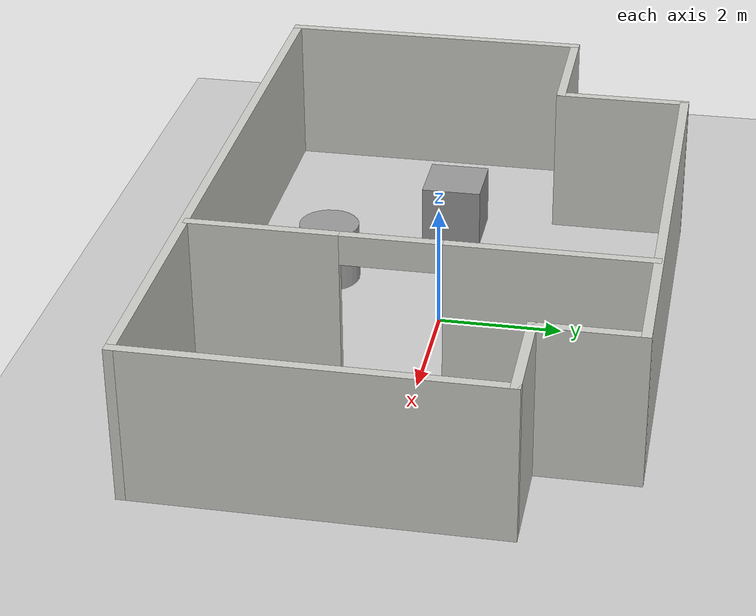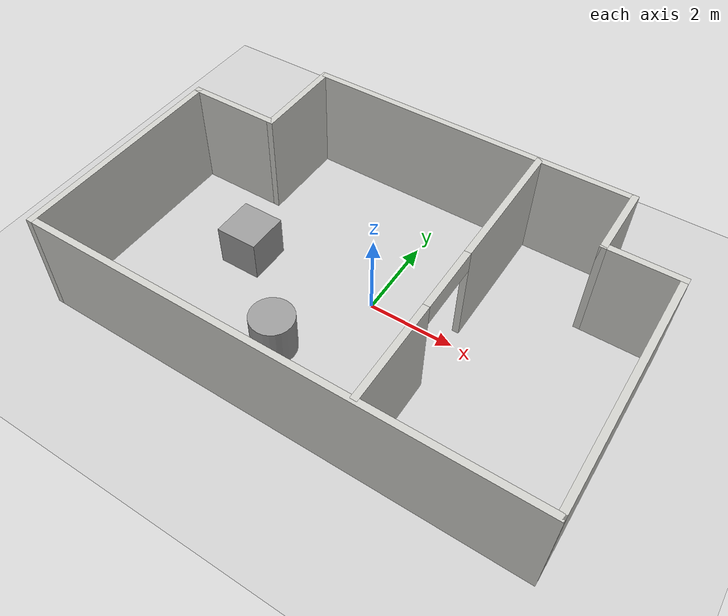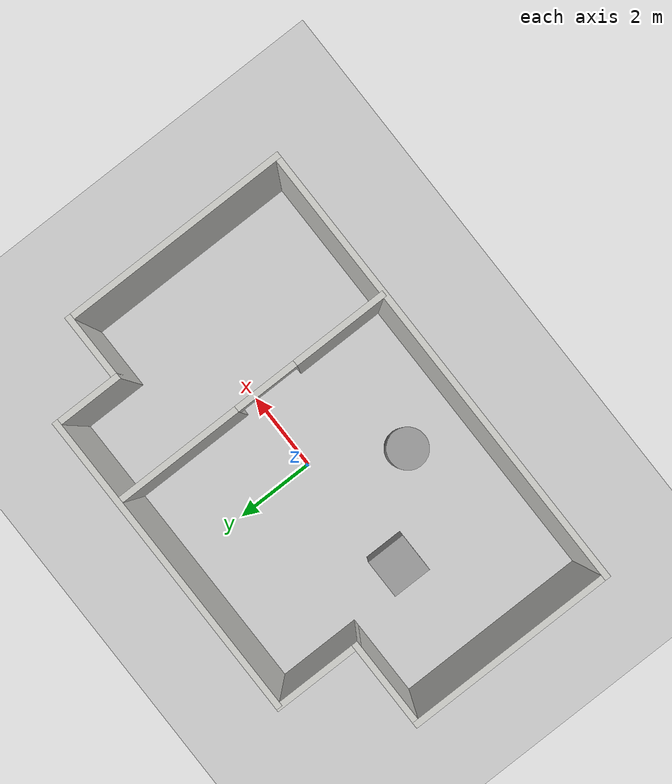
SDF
<sdf version="1.7">
 <world name="default">
  <light name="sun" type="directional">
   <pose>0 0 10 0 -0 0</pose>
   <diffuse>0.8 0.8 0.8 1</diffuse>
   <specular>0.2 0.2 0.2 1</specular>
   <attenuation>
    <range>1000</range>
    <constant>0.9</constant>
    <linear>0.01</linear>
    <quadratic>0.001</quadratic>
   </attenuation>
   <direction>-0.5 0.1 -0.9</direction>
   <spot><inner_angle>0</inner_angle><outer_angle>0</outer_angle><falloff>0</falloff></spot>
  </light>
  <model name="ground_plane">
   <static>1</static>
   <link name="link">
    <collision name="collision">
     <geometry><plane><normal>0 0 1</normal><size>100 100</size></plane></geometry>
     <surface>
      <contact><collide_bitmask>65535</collide_bitmask></contact>
      <friction><ode><mu>100</mu><mu2>50</mu2></ode></friction>
     </surface>
    </collision>
    <visual name="visual">
     <cast_shadows>0</cast_shadows>
     <geometry><plane><normal>0 0 1</normal><size>100 100</size></plane></geometry>
     <material>
      <script><uri>file://media/materials/scripts/gazebo.material</uri><name>Gazebo/Grey</name></script>
     </material>
    </visual>
   </link>
  </model>
  <gravity>0 0 -9.8</gravity>
  <magnetic_field>6e-06 2.3e-05 -4.2e-05</magnetic_field>
  <atmosphere type="adiabatic"/>
  <physics type="ode">
   <max_step_size>0.001</max_step_size>
   <real_time_factor>1</real_time_factor>
   <real_time_update_rate>1000</real_time_update_rate>
  </physics>
  <scene><ambient>0.4 0.4 0.4 1</ambient><background>0.7 0.7 0.7 1</background><shadows>1</shadows></scene>
  <spherical_coordinates>
   <surface_model>EARTH_WGS84</surface_model>
   <latitude_deg>0</latitude_deg>
   <longitude_deg>0</longitude_deg>
   <elevation>0</elevation>
   <heading_deg>0</heading_deg>
  </spherical_coordinates>
  <model name="m1">
   <pose>-0.085418 -0.010869 0 0 -0 0</pose>
   <link name="Wall_1">
    <collision name="Wall_1_Collision">
     <geometry><box><size>7.75 0.15 2.5</size></box></geometry>
     <pose>0 0 1.25 0 -0 0</pose>
    </collision>
    <visual name="Wall_1_Visual">
     <pose>0 0 1.25 0 -0 0</pose>
     <geometry><box><size>7.75 0.15 2.5</size></box></geometry>
     <material>
      <script><uri>file://media/materials/scripts/gazebo.material</uri><name>Gazebo/CeilingTiled</name></script>
      <ambient>1 1 1 1</ambient>
     </material>
     <meta><layer>0</layer></meta>
    </visual>
    <pose>0.275 3.59985 0 0 -0 0</pose>
   </link>
   <link name="Wall_10">
    <pose>1.96536 0.019434 0 0 -0 -1.5708</pose>
    <visual name="Wall_10_Visual_0">
     <pose>-1.99886 0 1.25 0 -0 0</pose>
     <geometry><box><size>3.25229 0.15 2.5</size></box></geometry>
     <material>
      <script><uri>file://media/materials/scripts/gazebo.material</uri><name>Gazebo/CeilingTiled</name></script>
      <ambient>1 1 1 1</ambient>
     </material>
     <meta><layer>0</layer></meta>
    </visual>
    <collision name="Wall_10_Collision_0">
     <geometry><box><size>3.25229 0.15 2.5</size></box></geometry>
     <pose>-1.99886 0 1.25 0 -0 0</pose>
    </collision>
    <visual name="Wall_10_Visual_1">
     <pose>2.41834 0 1.25 0 -0 0</pose>
     <geometry><box><size>2.41332 0.15 2.5</size></box></geometry>
     <material>
      <script><uri>file://media/materials/scripts/gazebo.material</uri><name>Gazebo/CeilingTiled</name></script>
      <ambient>1 1 1 1</ambient>
     </material>
     <meta><layer>0</layer></meta>
    </visual>
    <collision name="Wall_10_Collision_1">
     <geometry><box><size>2.41332 0.15 2.5</size></box></geometry>
     <pose>2.41834 0 1.25 0 -0 0</pose>
    </collision>
    <visual name="Wall_10_Visual_2">
     <pose>0.419484 0 2.25 0 -0 0</pose>
     <geometry><box><size>1.58439 0.15 0.5</size></box></geometry>
     <material>
      <script><uri>file://media/materials/scripts/gazebo.material</uri><name>Gazebo/CeilingTiled</name></script>
      <ambient>1 1 1 1</ambient>
     </material>
     <meta><layer>0</layer></meta>
    </visual>
    <collision name="Wall_10_Collision_2">
     <geometry><box><size>1.58439 0.15 0.5</size></box></geometry>
     <pose>0.419484 0 2.25 0 -0 0</pose>
    </collision>
   </link>
   <link name="Wall_2">
    <collision name="Wall_2_Collision">
     <geometry><box><size>1.75 0.15 2.5</size></box></geometry>
     <pose>0 0 1.25 0 -0 0</pose>
    </collision>
    <visual name="Wall_2_Visual">
     <pose>0 0 1.25 0 -0 0</pose>
     <geometry><box><size>1.75 0.15 2.5</size></box></geometry>
     <material>
      <script><uri>file://media/materials/scripts/gazebo.material</uri><name>Gazebo/CeilingTiled</name></script>
      <ambient>1 1 1 1</ambient>
     </material>
     <meta><layer>0</layer></meta>
    </visual>
    <pose>4.075 2.79985 0 0 -0 -1.5708</pose>
   </link>
   <link name="Wall_3">
    <collision name="Wall_3_Collision">
     <geometry><box><size>1.75 0.15 2.5</size></box></geometry>
     <pose>0 0 1.25 0 -0 0</pose>
    </collision>
    <visual name="Wall_3_Visual">
     <pose>0 0 1.25 0 -0 0</pose>
     <geometry><box><size>1.75 0.15 2.5</size></box></geometry>
     <material>
      <script><uri>file://media/materials/scripts/gazebo.material</uri><name>Gazebo/CeilingTiled</name></script>
      <ambient>1 1 1 1</ambient>
     </material>
     <meta><layer>0</layer></meta>
    </visual>
    <pose>4.875 1.99985 0 0 -0 0</pose>
   </link>
   <link name="Wall_4">
    <collision name="Wall_4_Collision">
     <geometry><box><size>5.75 0.15 2.5</size></box></geometry>
     <pose>0 0 1.25 0 -0 0</pose>
    </collision>
    <visual name="Wall_4_Visual">
     <pose>0 0 1.25 0 -0 0</pose>
     <geometry><box><size>5.75 0.15 2.5</size></box></geometry>
     <material>
      <script><uri>file://media/materials/scripts/gazebo.material</uri><name>Gazebo/CeilingTiled</name></script>
      <ambient>1 1 1 1</ambient>
     </material>
     <meta><layer>0</layer></meta>
    </visual>
    <pose>5.675 -0.800149 0 0 -0 -1.5708</pose>
   </link>
   <link name="Wall_5">
    <collision name="Wall_5_Collision">
     <geometry><box><size>11.5 0.15 2.5</size></box></geometry>
     <pose>0 0 1.25 0 -0 0</pose>
    </collision>
    <visual name="Wall_5_Visual">
     <pose>0 0 1.25 0 -0 0</pose>
     <geometry><box><size>11.5 0.15 2.5</size></box></geometry>
     <material>
      <script><uri>file://media/materials/scripts/gazebo.material</uri><name>Gazebo/CeilingTiled</name></script>
      <ambient>1 1 1 1</ambient>
     </material>
     <meta><layer>0</layer></meta>
    </visual>
    <pose>-0 -3.60015 0 0 -0 3.14159</pose>
   </link>
   <link name="Wall_6">
    <collision name="Wall_6_Collision">
     <geometry><box><size>5.25 0.15 2.5</size></box></geometry>
     <pose>0 0 1.25 0 -0 0</pose>
    </collision>
    <visual name="Wall_6_Visual">
     <pose>0 0 1.25 0 -0 0</pose>
     <geometry><box><size>5.25 0.15 2.5</size></box></geometry>
     <material>
      <script><uri>file://media/materials/scripts/gazebo.material</uri><name>Gazebo/CeilingTiled</name></script>
      <ambient>1 1 1 1</ambient>
     </material>
     <meta><layer>0</layer></meta>
    </visual>
    <pose>-5.675 -1.05015 0 0 -0 1.5708</pose>
   </link>
   <link name="Wall_7">
    <collision name="Wall_7_Collision">
     <geometry><box><size>2.25 0.15 2.5</size></box></geometry>
     <pose>0 0 1.25 0 -0 0</pose>
    </collision>
    <visual name="Wall_7_Visual">
     <pose>0 0 1.25 0 -0 0</pose>
     <geometry><box><size>2.25 0.15 2.5</size></box></geometry>
     <material>
      <script><uri>file://media/materials/scripts/gazebo.material</uri><name>Gazebo/CeilingTiled</name></script>
      <ambient>1 1 1 1</ambient>
     </material>
     <meta><layer>0</layer></meta>
    </visual>
    <pose>-4.625 1.49985 0 0 -0 0</pose>
   </link>
   <link name="Wall_8">
    <collision name="Wall_8_Collision">
     <geometry><box><size>2.2506 0.15 2.5</size></box></geometry>
     <pose>0 0 1.25 0 -0 0</pose>
    </collision>
    <visual name="Wall_8_Visual">
     <pose>0 0 1.25 0 -0 0</pose>
     <geometry><box><size>2.2506 0.15 2.5</size></box></geometry>
     <material>
      <script><uri>file://media/materials/scripts/gazebo.material</uri><name>Gazebo/CeilingTiled</name></script>
      <ambient>1 1 1 1</ambient>
     </material>
     <meta><layer>0</layer></meta>
    </visual>
    <pose>-3.575 2.54985 0 0 -0 1.5708</pose>
   </link>
   <static>1</static>
  </model>
  <model name="unit_box">
   <pose>-3.09161 -0.239218 0.5 0 -0 0</pose>
   <link name="link">
    <inertial>
     <mass>1</mass>
     <inertia>
      <ixx>0.166667</ixx>
      <ixy>0</ixy>
      <ixz>0</ixz>
      <iyy>0.166667</iyy>
      <iyz>0</iyz>
      <izz>0.166667</izz>
     </inertia>
    </inertial>
    <collision name="collision"><geometry><box><size>1 1 1</size></box></geometry></collision>
    <visual name="visual">
     <geometry><box><size>1 1 1</size></box></geometry>
     <material>
      <script><name>Gazebo/Grey</name><uri>file://media/materials/scripts/gazebo.material</uri></script>
     </material>
    </visual>
   </link>
  </model>
  <model name="unit_cylinder">
   <pose>-1.11123 -2.04862 0.5 0 -0 0</pose>
   <link name="link">
    <inertial>
     <mass>1</mass>
     <inertia><ixx>0.145833</ixx><ixy>0</ixy><ixz>0</ixz><iyy>0.145833</iyy><iyz>0</iyz><izz>0.125</izz></inertia>
    </inertial>
    <collision name="collision">
     <geometry><cylinder><radius>0.5</radius><length>1</length></cylinder></geometry>
    </collision>
    <visual name="visual">
     <geometry><cylinder><radius>0.5</radius><length>1</length></cylinder></geometry>
     <material>
      <script><name>Gazebo/Grey</name><uri>file://media/materials/scripts/gazebo.material</uri></script>
     </material>
    </visual>
   </link>
  </model>
 </world>
</sdf>
